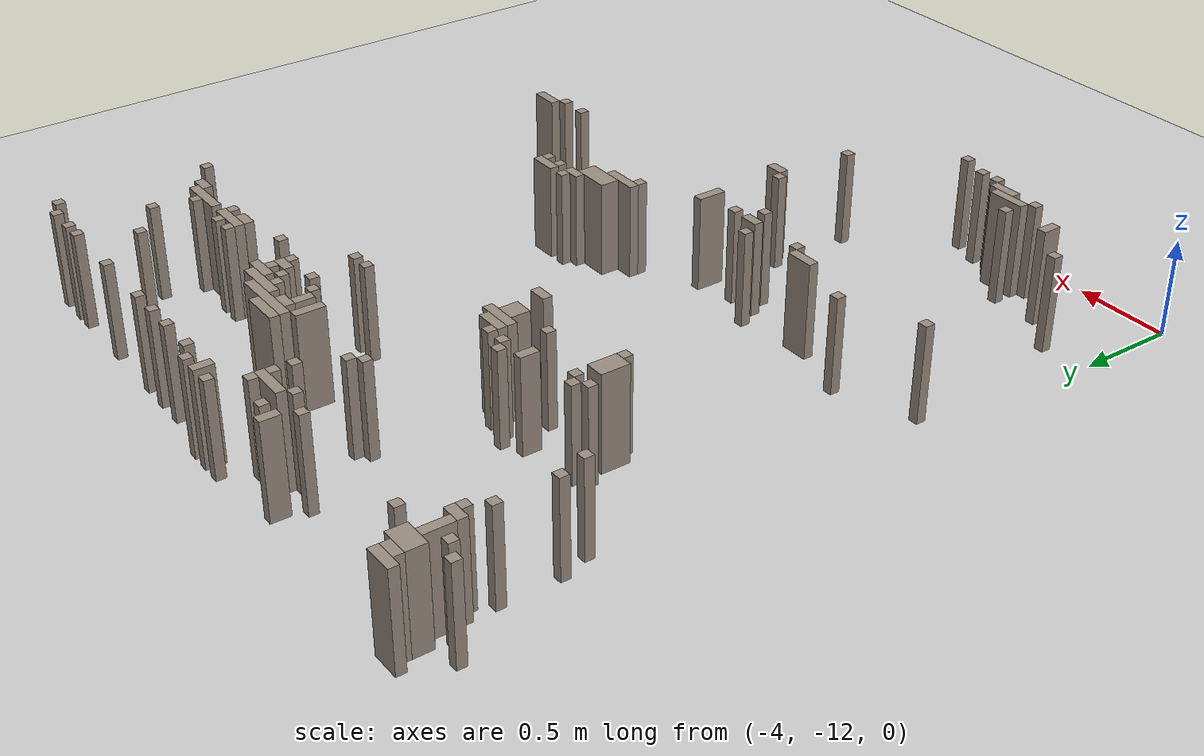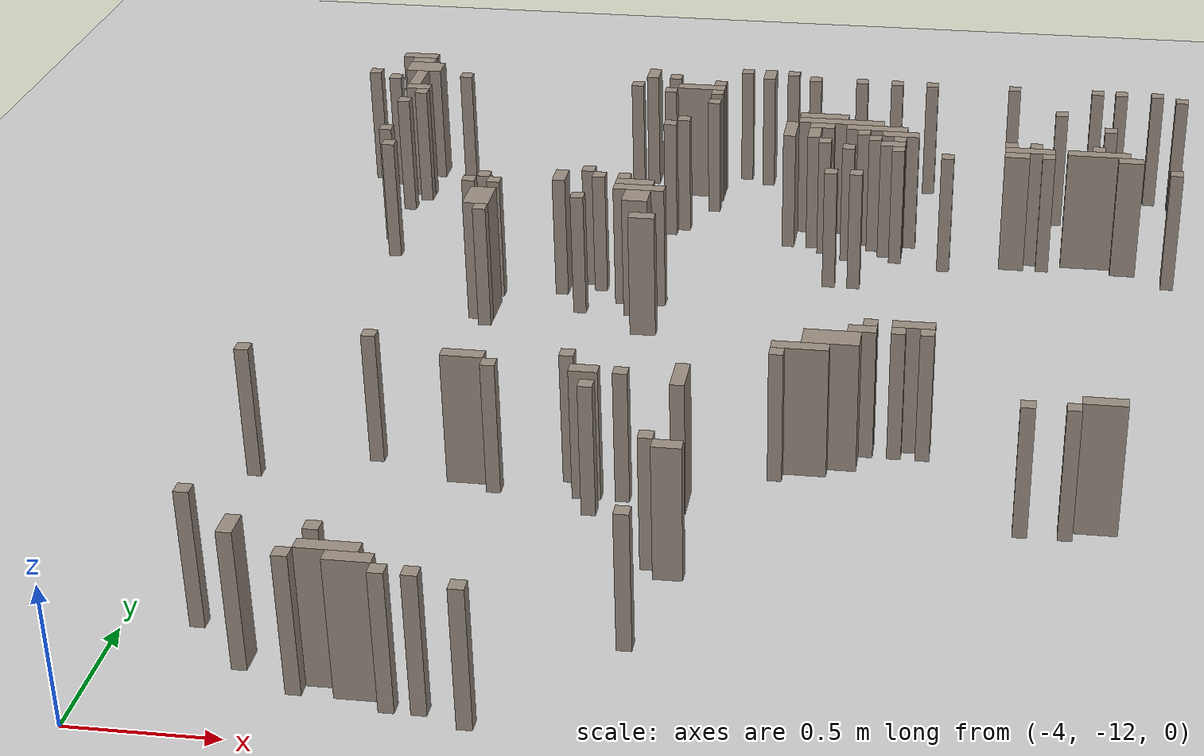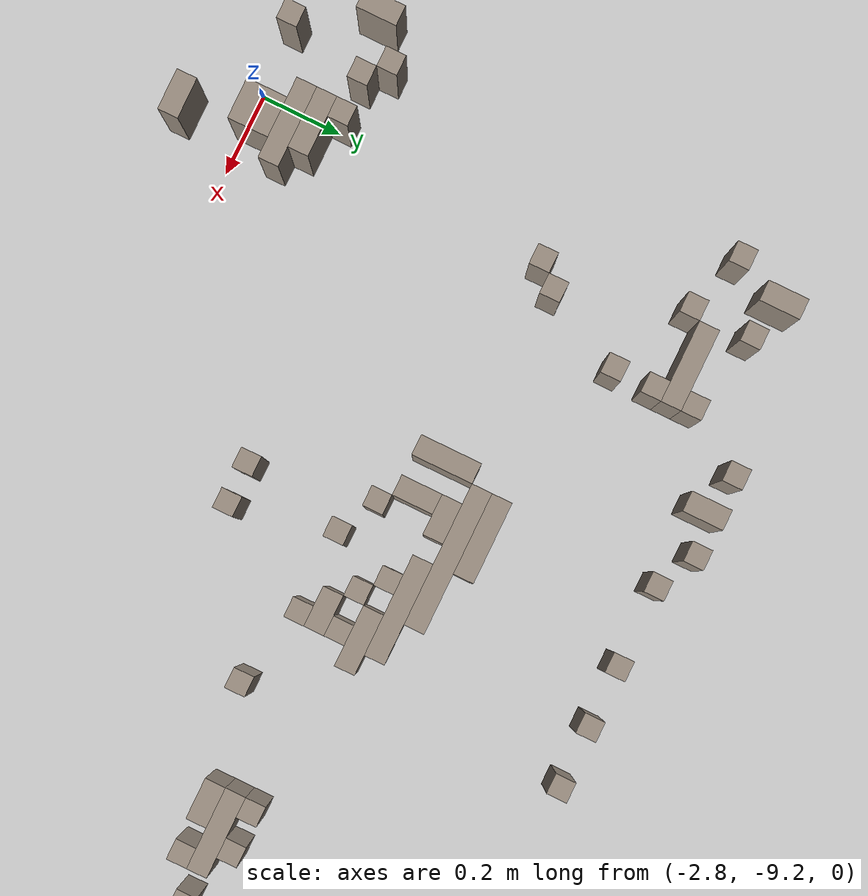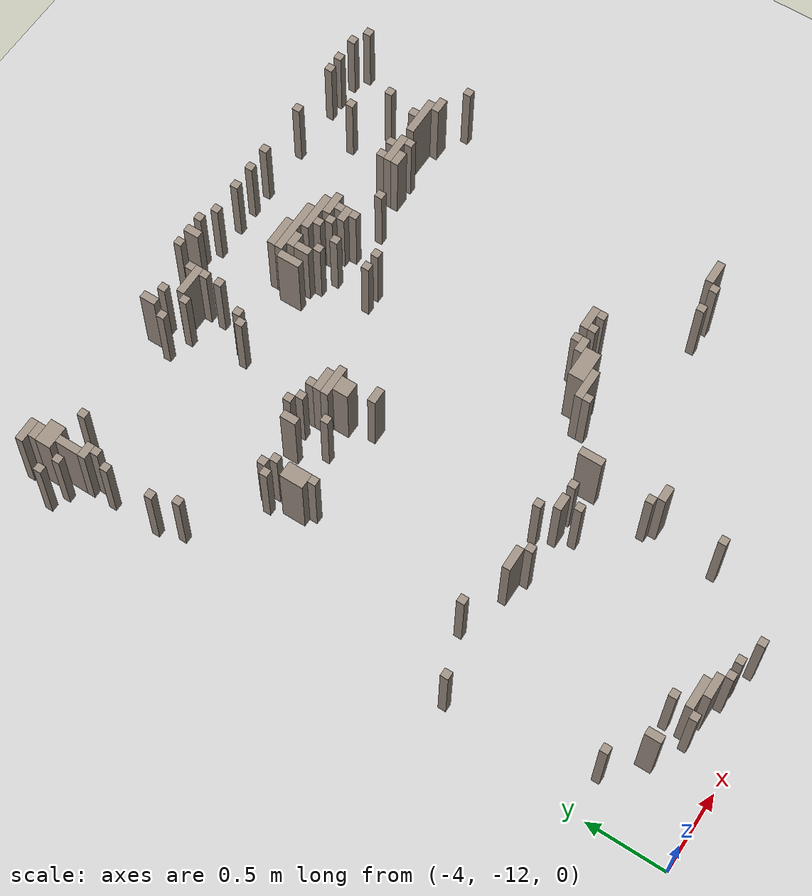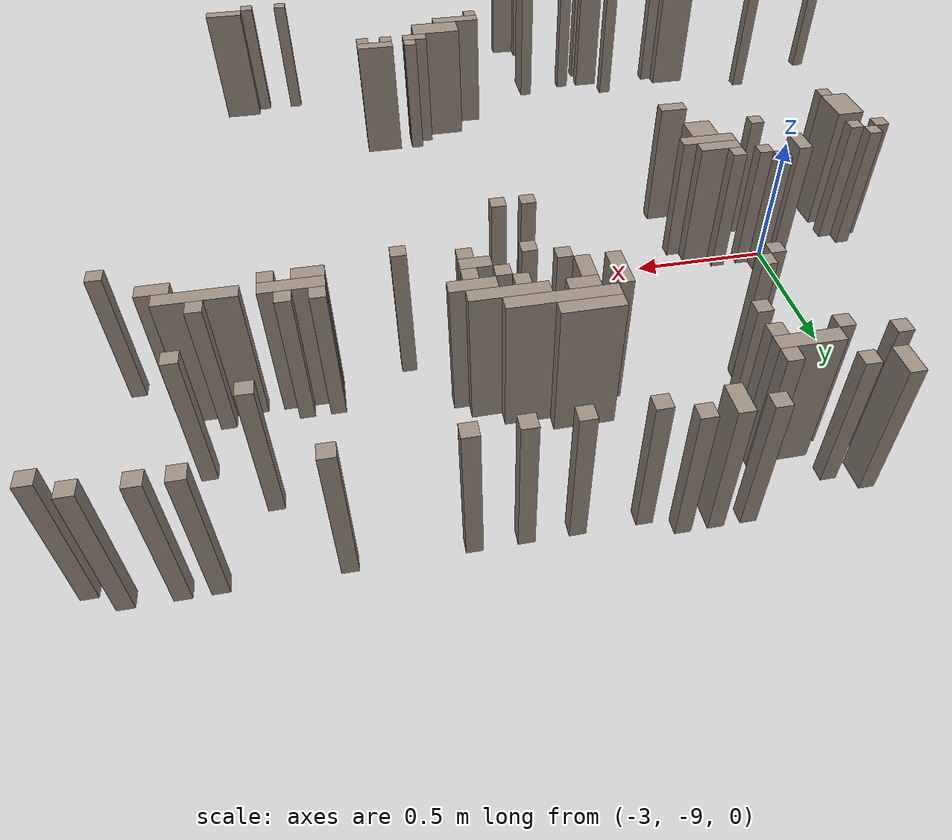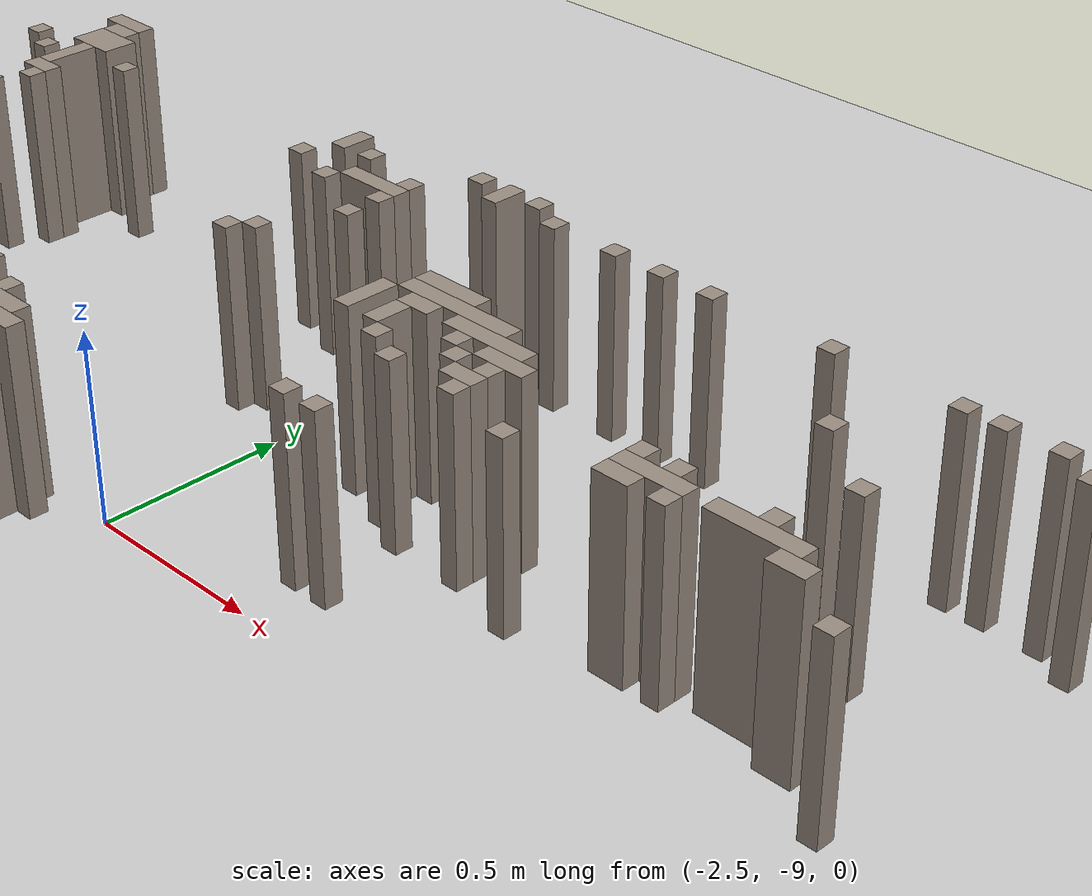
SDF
<sdf version="1.8">
 <world name="sala_real">
  <model name="ground_plane">
   <static>true</static>
   <link name="link">
    <collision name="col">
     <geometry><plane><normal>0 0 1</normal><size>100 100</size></plane></geometry>
    </collision>
    <visual name="vis">
     <geometry><plane><normal>0 0 1</normal><size>100 100</size></plane></geometry>
     <material><ambient>0.8 0.8 0.8 1</ambient><diffuse>0.8 0.8 0.8 1</diffuse></material>
    </visual>
   </link>
  </model>
  <model name="wall_508">
   <static>true</static>
   <pose>-2.760 -7.938 0.250 0 0 0</pose>
   <link name="link">
    <collision name="col"><geometry><box><size>0.050 0.050 0.500</size></box></geometry></collision>
    <visual name="vis">
     <geometry><box><size>0.050 0.050 0.500</size></box></geometry>
     <material><ambient>0.6 0.55 0.5 1</ambient><diffuse>0.6 0.55 0.5 1</diffuse></material>
    </visual>
   </link>
  </model>
  <model name="wall_509">
   <static>true</static>
   <pose>-2.560 -7.988 0.250 0 0 0</pose>
   <link name="link">
    <collision name="col"><geometry><box><size>0.050 0.050 0.500</size></box></geometry></collision>
    <visual name="vis">
     <geometry><box><size>0.050 0.050 0.500</size></box></geometry>
     <material><ambient>0.6 0.55 0.5 1</ambient><diffuse>0.6 0.55 0.5 1</diffuse></material>
    </visual>
   </link>
  </model>
  <model name="wall_516">
   <static>true</static>
   <pose>-2.560 -8.088 0.250 0 0 0</pose>
   <link name="link">
    <collision name="col"><geometry><box><size>0.050 0.050 0.500</size></box></geometry></collision>
    <visual name="vis">
     <geometry><box><size>0.050 0.050 0.500</size></box></geometry>
     <material><ambient>0.6 0.55 0.5 1</ambient><diffuse>0.6 0.55 0.5 1</diffuse></material>
    </visual>
   </link>
  </model>
  <model name="wall_524">
   <static>true</static>
   <pose>-3.860 -8.088 0.250 0 0 0</pose>
   <link name="link">
    <collision name="col"><geometry><box><size>0.050 0.150 0.500</size></box></geometry></collision>
    <visual name="vis">
     <geometry><box><size>0.050 0.150 0.500</size></box></geometry>
     <material><ambient>0.6 0.55 0.5 1</ambient><diffuse>0.6 0.55 0.5 1</diffuse></material>
    </visual>
   </link>
  </model>
  <model name="wall_532">
   <static>true</static>
   <pose>-1.310 -7.888 0.250 0 0 0</pose>
   <link name="link">
    <collision name="col"><geometry><box><size>0.050 0.050 0.500</size></box></geometry></collision>
    <visual name="vis">
     <geometry><box><size>0.050 0.050 0.500</size></box></geometry>
     <material><ambient>0.6 0.55 0.5 1</ambient><diffuse>0.6 0.55 0.5 1</diffuse></material>
    </visual>
   </link>
  </model>
  <model name="wall_533">
   <static>true</static>
   <pose>-0.960 -7.888 0.250 0 0 0</pose>
   <link name="link">
    <collision name="col"><geometry><box><size>0.050 0.050 0.500</size></box></geometry></collision>
    <visual name="vis">
     <geometry><box><size>0.050 0.050 0.500</size></box></geometry>
     <material><ambient>0.6 0.55 0.5 1</ambient><diffuse>0.6 0.55 0.5 1</diffuse></material>
    </visual>
   </link>
  </model>
  <model name="wall_537">
   <static>true</static>
   <pose>-1.960 -7.888 0.250 0 0 0</pose>
   <link name="link">
    <collision name="col"><geometry><box><size>0.050 0.050 0.500</size></box></geometry></collision>
    <visual name="vis">
     <geometry><box><size>0.050 0.050 0.500</size></box></geometry>
     <material><ambient>0.6 0.55 0.5 1</ambient><diffuse>0.6 0.55 0.5 1</diffuse></material>
    </visual>
   </link>
  </model>
  <model name="wall_538">
   <static>true</static>
   <pose>-1.760 -8.488 0.250 0 0 0</pose>
   <link name="link">
    <collision name="col"><geometry><box><size>0.050 0.050 0.500</size></box></geometry></collision>
    <visual name="vis">
     <geometry><box><size>0.050 0.050 0.500</size></box></geometry>
     <material><ambient>0.6 0.55 0.5 1</ambient><diffuse>0.6 0.55 0.5 1</diffuse></material>
    </visual>
   </link>
  </model>
  <model name="wall_541">
   <static>true</static>
   <pose>-3.860 -8.338 0.250 0 0 0</pose>
   <link name="link">
    <collision name="col"><geometry><box><size>0.050 0.050 0.500</size></box></geometry></collision>
    <visual name="vis">
     <geometry><box><size>0.050 0.050 0.500</size></box></geometry>
     <material><ambient>0.6 0.55 0.5 1</ambient><diffuse>0.6 0.55 0.5 1</diffuse></material>
    </visual>
   </link>
  </model>
  <model name="wall_545">
   <static>true</static>
   <pose>-3.810 -8.238 0.250 0 0 0</pose>
   <link name="link">
    <collision name="col"><geometry><box><size>0.050 0.050 0.500</size></box></geometry></collision>
    <visual name="vis">
     <geometry><box><size>0.050 0.050 0.500</size></box></geometry>
     <material><ambient>0.6 0.55 0.5 1</ambient><diffuse>0.6 0.55 0.5 1</diffuse></material>
    </visual>
   </link>
  </model>
  <model name="wall_546">
   <static>true</static>
   <pose>-1.910 -8.438 0.250 0 0 0</pose>
   <link name="link">
    <collision name="col"><geometry><box><size>0.050 0.050 0.500</size></box></geometry></collision>
    <visual name="vis">
     <geometry><box><size>0.050 0.050 0.500</size></box></geometry>
     <material><ambient>0.6 0.55 0.5 1</ambient><diffuse>0.6 0.55 0.5 1</diffuse></material>
    </visual>
   </link>
  </model>
  <model name="wall_548">
   <static>true</static>
   <pose>-2.910 -8.038 0.250 0 0 0</pose>
   <link name="link">
    <collision name="col"><geometry><box><size>0.050 0.050 0.500</size></box></geometry></collision>
    <visual name="vis">
     <geometry><box><size>0.050 0.050 0.500</size></box></geometry>
     <material><ambient>0.6 0.55 0.5 1</ambient><diffuse>0.6 0.55 0.5 1</diffuse></material>
    </visual>
   </link>
  </model>
  <model name="wall_553">
   <static>true</static>
   <pose>-2.960 -8.938 0.250 0 0 0</pose>
   <link name="link">
    <collision name="col"><geometry><box><size>0.050 0.050 0.500</size></box></geometry></collision>
    <visual name="vis">
     <geometry><box><size>0.050 0.050 0.500</size></box></geometry>
     <material><ambient>0.6 0.55 0.5 1</ambient><diffuse>0.6 0.55 0.5 1</diffuse></material>
    </visual>
   </link>
  </model>
  <model name="wall_555">
   <static>true</static>
   <pose>-3.310 -9.088 0.250 0 0 0</pose>
   <link name="link">
    <collision name="col"><geometry><box><size>0.050 0.050 0.500</size></box></geometry></collision>
    <visual name="vis">
     <geometry><box><size>0.050 0.050 0.500</size></box></geometry>
     <material><ambient>0.6 0.55 0.5 1</ambient><diffuse>0.6 0.55 0.5 1</diffuse></material>
    </visual>
   </link>
  </model>
  <model name="wall_567">
   <static>true</static>
   <pose>-1.760 -8.588 0.250 0 0 0</pose>
   <link name="link">
    <collision name="col"><geometry><box><size>0.050 0.050 0.500</size></box></geometry></collision>
    <visual name="vis">
     <geometry><box><size>0.050 0.050 0.500</size></box></geometry>
     <material><ambient>0.6 0.55 0.5 1</ambient><diffuse>0.6 0.55 0.5 1</diffuse></material>
    </visual>
   </link>
  </model>
  <model name="wall_569">
   <static>true</static>
   <pose>-1.785 -8.538 0.250 0 0 0</pose>
   <link name="link">
    <collision name="col"><geometry><box><size>0.100 0.050 0.500</size></box></geometry></collision>
    <visual name="vis">
     <geometry><box><size>0.100 0.050 0.500</size></box></geometry>
     <material><ambient>0.6 0.55 0.5 1</ambient><diffuse>0.6 0.55 0.5 1</diffuse></material>
    </visual>
   </link>
  </model>
  <model name="wall_570">
   <static>true</static>
   <pose>-1.660 -7.888 0.250 0 0 0</pose>
   <link name="link">
    <collision name="col"><geometry><box><size>0.050 0.050 0.500</size></box></geometry></collision>
    <visual name="vis">
     <geometry><box><size>0.050 0.050 0.500</size></box></geometry>
     <material><ambient>0.6 0.55 0.5 1</ambient><diffuse>0.6 0.55 0.5 1</diffuse></material>
    </visual>
   </link>
  </model>
  <model name="wall_571">
   <static>true</static>
   <pose>-1.560 -8.638 0.250 0 0 0</pose>
   <link name="link">
    <collision name="col"><geometry><box><size>0.050 0.050 0.500</size></box></geometry></collision>
    <visual name="vis">
     <geometry><box><size>0.050 0.050 0.500</size></box></geometry>
     <material><ambient>0.6 0.55 0.5 1</ambient><diffuse>0.6 0.55 0.5 1</diffuse></material>
    </visual>
   </link>
  </model>
  <model name="wall_572">
   <static>true</static>
   <pose>-2.060 -8.538 0.250 0 0 0</pose>
   <link name="link">
    <collision name="col"><geometry><box><size>0.050 0.050 0.500</size></box></geometry></collision>
    <visual name="vis">
     <geometry><box><size>0.050 0.050 0.500</size></box></geometry>
     <material><ambient>0.6 0.55 0.5 1</ambient><diffuse>0.6 0.55 0.5 1</diffuse></material>
    </visual>
   </link>
  </model>
  <model name="wall_574">
   <static>true</static>
   <pose>-2.760 -8.088 0.250 0 0 0</pose>
   <link name="link">
    <collision name="col"><geometry><box><size>0.050 0.050 0.500</size></box></geometry></collision>
    <visual name="vis">
     <geometry><box><size>0.050 0.050 0.500</size></box></geometry>
     <material><ambient>0.6 0.55 0.5 1</ambient><diffuse>0.6 0.55 0.5 1</diffuse></material>
    </visual>
   </link>
  </model>
  <model name="wall_577">
   <static>true</static>
   <pose>-2.360 -7.863 0.250 0 0 0</pose>
   <link name="link">
    <collision name="col"><geometry><box><size>0.050 0.100 0.500</size></box></geometry></collision>
    <visual name="vis">
     <geometry><box><size>0.050 0.100 0.500</size></box></geometry>
     <material><ambient>0.6 0.55 0.5 1</ambient><diffuse>0.6 0.55 0.5 1</diffuse></material>
    </visual>
   </link>
  </model>
  <model name="wall_579">
   <static>true</static>
   <pose>-3.860 -8.638 0.250 0 0 0</pose>
   <link name="link">
    <collision name="col"><geometry><box><size>0.050 0.050 0.500</size></box></geometry></collision>
    <visual name="vis">
     <geometry><box><size>0.050 0.050 0.500</size></box></geometry>
     <material><ambient>0.6 0.55 0.5 1</ambient><diffuse>0.6 0.55 0.5 1</diffuse></material>
    </visual>
   </link>
  </model>
  <model name="wall_580">
   <static>true</static>
   <pose>-2.685 -9.338 0.250 0 0 0</pose>
   <link name="link">
    <collision name="col"><geometry><box><size>0.100 0.050 0.500</size></box></geometry></collision>
    <visual name="vis">
     <geometry><box><size>0.100 0.050 0.500</size></box></geometry>
     <material><ambient>0.6 0.55 0.5 1</ambient><diffuse>0.6 0.55 0.5 1</diffuse></material>
    </visual>
   </link>
  </model>
  <model name="wall_581">
   <static>true</static>
   <pose>-2.560 -8.188 0.250 0 0 0</pose>
   <link name="link">
    <collision name="col"><geometry><box><size>0.050 0.050 0.500</size></box></geometry></collision>
    <visual name="vis">
     <geometry><box><size>0.050 0.050 0.500</size></box></geometry>
     <material><ambient>0.6 0.55 0.5 1</ambient><diffuse>0.6 0.55 0.5 1</diffuse></material>
    </visual>
   </link>
  </model>
  <model name="wall_586">
   <static>true</static>
   <pose>-1.210 -8.488 0.250 0 0 0</pose>
   <link name="link">
    <collision name="col"><geometry><box><size>0.050 0.050 0.500</size></box></geometry></collision>
    <visual name="vis">
     <geometry><box><size>0.050 0.050 0.500</size></box></geometry>
     <material><ambient>0.6 0.55 0.5 1</ambient><diffuse>0.6 0.55 0.5 1</diffuse></material>
    </visual>
   </link>
  </model>
  <model name="wall_590">
   <static>true</static>
   <pose>-2.660 -8.388 0.250 0 0 0</pose>
   <link name="link">
    <collision name="col"><geometry><box><size>0.050 0.050 0.500</size></box></geometry></collision>
    <visual name="vis">
     <geometry><box><size>0.050 0.050 0.500</size></box></geometry>
     <material><ambient>0.6 0.55 0.5 1</ambient><diffuse>0.6 0.55 0.5 1</diffuse></material>
    </visual>
   </link>
  </model>
  <model name="wall_596">
   <static>true</static>
   <pose>-2.410 -10.938 0.250 0 0 0</pose>
   <link name="link">
    <collision name="col"><geometry><box><size>0.050 0.050 0.500</size></box></geometry></collision>
    <visual name="vis">
     <geometry><box><size>0.050 0.050 0.500</size></box></geometry>
     <material><ambient>0.6 0.55 0.5 1</ambient><diffuse>0.6 0.55 0.5 1</diffuse></material>
    </visual>
   </link>
  </model>
  <model name="wall_600">
   <static>true</static>
   <pose>-3.310 -9.338 0.250 0 0 0</pose>
   <link name="link">
    <collision name="col"><geometry><box><size>0.050 0.050 0.500</size></box></geometry></collision>
    <visual name="vis">
     <geometry><box><size>0.050 0.050 0.500</size></box></geometry>
     <material><ambient>0.6 0.55 0.5 1</ambient><diffuse>0.6 0.55 0.5 1</diffuse></material>
    </visual>
   </link>
  </model>
  <model name="wall_601">
   <static>true</static>
   <pose>-3.360 -9.038 0.250 0 0 0</pose>
   <link name="link">
    <collision name="col"><geometry><box><size>0.050 0.050 0.500</size></box></geometry></collision>
    <visual name="vis">
     <geometry><box><size>0.050 0.050 0.500</size></box></geometry>
     <material><ambient>0.6 0.55 0.5 1</ambient><diffuse>0.6 0.55 0.5 1</diffuse></material>
    </visual>
   </link>
  </model>
  <model name="wall_602">
   <static>true</static>
   <pose>-3.060 -9.013 0.250 0 0 0</pose>
   <link name="link">
    <collision name="col"><geometry><box><size>0.050 0.100 0.500</size></box></geometry></collision>
    <visual name="vis">
     <geometry><box><size>0.050 0.100 0.500</size></box></geometry>
     <material><ambient>0.6 0.55 0.5 1</ambient><diffuse>0.6 0.55 0.5 1</diffuse></material>
    </visual>
   </link>
  </model>
  <model name="wall_603">
   <static>true</static>
   <pose>-2.960 -9.188 0.250 0 0 0</pose>
   <link name="link">
    <collision name="col"><geometry><box><size>0.050 0.050 0.500</size></box></geometry></collision>
    <visual name="vis">
     <geometry><box><size>0.050 0.050 0.500</size></box></geometry>
     <material><ambient>0.6 0.55 0.5 1</ambient><diffuse>0.6 0.55 0.5 1</diffuse></material>
    </visual>
   </link>
  </model>
  <model name="wall_604">
   <static>true</static>
   <pose>-2.810 -8.988 0.250 0 0 0</pose>
   <link name="link">
    <collision name="col"><geometry><box><size>0.050 0.050 0.500</size></box></geometry></collision>
    <visual name="vis">
     <geometry><box><size>0.050 0.050 0.500</size></box></geometry>
     <material><ambient>0.6 0.55 0.5 1</ambient><diffuse>0.6 0.55 0.5 1</diffuse></material>
    </visual>
   </link>
  </model>
  <model name="wall_642">
   <static>true</static>
   <pose>-0.610 -7.938 0.250 0 0 0</pose>
   <link name="link">
    <collision name="col"><geometry><box><size>0.050 0.050 0.500</size></box></geometry></collision>
    <visual name="vis">
     <geometry><box><size>0.050 0.050 0.500</size></box></geometry>
     <material><ambient>0.6 0.55 0.5 1</ambient><diffuse>0.6 0.55 0.5 1</diffuse></material>
    </visual>
   </link>
  </model>
  <model name="wall_652">
   <static>true</static>
   <pose>-2.160 -7.888 0.250 0 0 0</pose>
   <link name="link">
    <collision name="col"><geometry><box><size>0.050 0.050 0.500</size></box></geometry></collision>
    <visual name="vis">
     <geometry><box><size>0.050 0.050 0.500</size></box></geometry>
     <material><ambient>0.6 0.55 0.5 1</ambient><diffuse>0.6 0.55 0.5 1</diffuse></material>
    </visual>
   </link>
  </model>
  <model name="wall_665">
   <static>true</static>
   <pose>-2.410 -11.388 0.250 0 0 0</pose>
   <link name="link">
    <collision name="col"><geometry><box><size>0.050 0.050 0.500</size></box></geometry></collision>
    <visual name="vis">
     <geometry><box><size>0.050 0.050 0.500</size></box></geometry>
     <material><ambient>0.6 0.55 0.5 1</ambient><diffuse>0.6 0.55 0.5 1</diffuse></material>
    </visual>
   </link>
  </model>
  <model name="wall_666">
   <static>true</static>
   <pose>-0.860 -7.888 0.250 0 0 0</pose>
   <link name="link">
    <collision name="col"><geometry><box><size>0.050 0.050 0.500</size></box></geometry></collision>
    <visual name="vis">
     <geometry><box><size>0.050 0.050 0.500</size></box></geometry>
     <material><ambient>0.6 0.55 0.5 1</ambient><diffuse>0.6 0.55 0.5 1</diffuse></material>
    </visual>
   </link>
  </model>
  <model name="wall_669">
   <static>true</static>
   <pose>-2.060 -10.338 0.250 0 0 0</pose>
   <link name="link">
    <collision name="col"><geometry><box><size>0.050 0.050 0.500</size></box></geometry></collision>
    <visual name="vis">
     <geometry><box><size>0.050 0.050 0.500</size></box></geometry>
     <material><ambient>0.6 0.55 0.5 1</ambient><diffuse>0.6 0.55 0.5 1</diffuse></material>
    </visual>
   </link>
  </model>
  <model name="wall_676">
   <static>true</static>
   <pose>-1.660 -10.138 0.250 0 0 0</pose>
   <link name="link">
    <collision name="col"><geometry><box><size>0.050 0.050 0.500</size></box></geometry></collision>
    <visual name="vis">
     <geometry><box><size>0.050 0.050 0.500</size></box></geometry>
     <material><ambient>0.6 0.55 0.5 1</ambient><diffuse>0.6 0.55 0.5 1</diffuse></material>
    </visual>
   </link>
  </model>
  <model name="wall_688">
   <static>true</static>
   <pose>-2.085 -8.288 0.250 0 0 0</pose>
   <link name="link">
    <collision name="col"><geometry><box><size>0.200 0.050 0.500</size></box></geometry></collision>
    <visual name="vis">
     <geometry><box><size>0.200 0.050 0.500</size></box></geometry>
     <material><ambient>0.6 0.55 0.5 1</ambient><diffuse>0.6 0.55 0.5 1</diffuse></material>
    </visual>
   </link>
  </model>
  <model name="wall_690">
   <static>true</static>
   <pose>-0.660 -8.688 0.250 0 0 0</pose>
   <link name="link">
    <collision name="col"><geometry><box><size>0.050 0.050 0.500</size></box></geometry></collision>
    <visual name="vis">
     <geometry><box><size>0.050 0.050 0.500</size></box></geometry>
     <material><ambient>0.6 0.55 0.5 1</ambient><diffuse>0.6 0.55 0.5 1</diffuse></material>
    </visual>
   </link>
  </model>
  <model name="wall_713">
   <static>true</static>
   <pose>-1.960 -8.588 0.250 0 0 0</pose>
   <link name="link">
    <collision name="col"><geometry><box><size>0.050 0.050 0.500</size></box></geometry></collision>
    <visual name="vis">
     <geometry><box><size>0.050 0.050 0.500</size></box></geometry>
     <material><ambient>0.6 0.55 0.5 1</ambient><diffuse>0.6 0.55 0.5 1</diffuse></material>
    </visual>
   </link>
  </model>
  <model name="wall_714">
   <static>true</static>
   <pose>-1.760 -10.088 0.250 0 0 0</pose>
   <link name="link">
    <collision name="col"><geometry><box><size>0.050 0.050 0.500</size></box></geometry></collision>
    <visual name="vis">
     <geometry><box><size>0.050 0.050 0.500</size></box></geometry>
     <material><ambient>0.6 0.55 0.5 1</ambient><diffuse>0.6 0.55 0.5 1</diffuse></material>
    </visual>
   </link>
  </model>
  <model name="wall_718">
   <static>true</static>
   <pose>-1.910 -8.838 0.250 0 0 0</pose>
   <link name="link">
    <collision name="col"><geometry><box><size>0.050 0.050 0.500</size></box></geometry></collision>
    <visual name="vis">
     <geometry><box><size>0.050 0.050 0.500</size></box></geometry>
     <material><ambient>0.6 0.55 0.5 1</ambient><diffuse>0.6 0.55 0.5 1</diffuse></material>
    </visual>
   </link>
  </model>
  <model name="wall_853">
   <static>true</static>
   <pose>-2.360 -10.538 0.250 0 0 0</pose>
   <link name="link">
    <collision name="col"><geometry><box><size>0.050 0.150 0.500</size></box></geometry></collision>
    <visual name="vis">
     <geometry><box><size>0.050 0.150 0.500</size></box></geometry>
     <material><ambient>0.6 0.55 0.5 1</ambient><diffuse>0.6 0.55 0.5 1</diffuse></material>
    </visual>
   </link>
  </model>
  <model name="wall_870">
   <static>true</static>
   <pose>-2.335 -10.988 0.250 0 0 0</pose>
   <link name="link">
    <collision name="col"><geometry><box><size>0.100 0.050 0.500</size></box></geometry></collision>
    <visual name="vis">
     <geometry><box><size>0.100 0.050 0.500</size></box></geometry>
     <material><ambient>0.6 0.55 0.5 1</ambient><diffuse>0.6 0.55 0.5 1</diffuse></material>
    </visual>
   </link>
  </model>
  <model name="wall_913">
   <static>true</static>
   <pose>-1.310 -8.488 0.250 0 0 0</pose>
   <link name="link">
    <collision name="col"><geometry><box><size>0.050 0.050 0.500</size></box></geometry></collision>
    <visual name="vis">
     <geometry><box><size>0.050 0.050 0.500</size></box></geometry>
     <material><ambient>0.6 0.55 0.5 1</ambient><diffuse>0.6 0.55 0.5 1</diffuse></material>
    </visual>
   </link>
  </model>
  <model name="wall_920">
   <static>true</static>
   <pose>-2.260 -7.838 0.250 0 0 0</pose>
   <link name="link">
    <collision name="col"><geometry><box><size>0.050 0.050 0.500</size></box></geometry></collision>
    <visual name="vis">
     <geometry><box><size>0.050 0.050 0.500</size></box></geometry>
     <material><ambient>0.6 0.55 0.5 1</ambient><diffuse>0.6 0.55 0.5 1</diffuse></material>
    </visual>
   </link>
  </model>
  <model name="wall_931">
   <static>true</static>
   <pose>-1.060 -10.588 0.250 0 0 0</pose>
   <link name="link">
    <collision name="col"><geometry><box><size>0.050 0.050 0.500</size></box></geometry></collision>
    <visual name="vis">
     <geometry><box><size>0.050 0.050 0.500</size></box></geometry>
     <material><ambient>0.6 0.55 0.5 1</ambient><diffuse>0.6 0.55 0.5 1</diffuse></material>
    </visual>
   </link>
  </model>
  <model name="wall_953">
   <static>true</static>
   <pose>-2.210 -8.438 0.250 0 0 0</pose>
   <link name="link">
    <collision name="col"><geometry><box><size>0.050 0.150 0.500</size></box></geometry></collision>
    <visual name="vis">
     <geometry><box><size>0.050 0.150 0.500</size></box></geometry>
     <material><ambient>0.6 0.55 0.5 1</ambient><diffuse>0.6 0.55 0.5 1</diffuse></material>
    </visual>
   </link>
  </model>
  <model name="wall_957">
   <static>true</static>
   <pose>-1.285 -8.588 0.250 0 0 0</pose>
   <link name="link">
    <collision name="col"><geometry><box><size>0.100 0.050 0.500</size></box></geometry></collision>
    <visual name="vis">
     <geometry><box><size>0.100 0.050 0.500</size></box></geometry>
     <material><ambient>0.6 0.55 0.5 1</ambient><diffuse>0.6 0.55 0.5 1</diffuse></material>
    </visual>
   </link>
  </model>
  <model name="wall_1060">
   <static>true</static>
   <pose>-0.710 -7.888 0.250 0 0 0</pose>
   <link name="link">
    <collision name="col"><geometry><box><size>0.050 0.050 0.500</size></box></geometry></collision>
    <visual name="vis">
     <geometry><box><size>0.050 0.050 0.500</size></box></geometry>
     <material><ambient>0.6 0.55 0.5 1</ambient><diffuse>0.6 0.55 0.5 1</diffuse></material>
    </visual>
   </link>
  </model>
  <model name="wall_1090">
   <static>true</static>
   <pose>-3.910 -7.838 0.250 0 0 0</pose>
   <link name="link">
    <collision name="col"><geometry><box><size>0.150 0.050 0.500</size></box></geometry></collision>
    <visual name="vis">
     <geometry><box><size>0.150 0.050 0.500</size></box></geometry>
     <material><ambient>0.6 0.55 0.5 1</ambient><diffuse>0.6 0.55 0.5 1</diffuse></material>
    </visual>
   </link>
  </model>
  <model name="wall_1091">
   <static>true</static>
   <pose>-3.760 -11.438 0.250 0 0 0</pose>
   <link name="link">
    <collision name="col"><geometry><box><size>0.050 0.050 0.500</size></box></geometry></collision>
    <visual name="vis">
     <geometry><box><size>0.050 0.050 0.500</size></box></geometry>
     <material><ambient>0.6 0.55 0.5 1</ambient><diffuse>0.6 0.55 0.5 1</diffuse></material>
    </visual>
   </link>
  </model>
  <model name="wall_1094">
   <static>true</static>
   <pose>-3.960 -8.088 0.250 0 0 0</pose>
   <link name="link">
    <collision name="col"><geometry><box><size>0.050 0.050 0.500</size></box></geometry></collision>
    <visual name="vis">
     <geometry><box><size>0.050 0.050 0.500</size></box></geometry>
     <material><ambient>0.6 0.55 0.5 1</ambient><diffuse>0.6 0.55 0.5 1</diffuse></material>
    </visual>
   </link>
  </model>
  <model name="wall_1096">
   <static>true</static>
   <pose>-3.810 -8.788 0.250 0 0 0</pose>
   <link name="link">
    <collision name="col"><geometry><box><size>0.050 0.050 0.500</size></box></geometry></collision>
    <visual name="vis">
     <geometry><box><size>0.050 0.050 0.500</size></box></geometry>
     <material><ambient>0.6 0.55 0.5 1</ambient><diffuse>0.6 0.55 0.5 1</diffuse></material>
    </visual>
   </link>
  </model>
  <model name="wall_1097">
   <static>true</static>
   <pose>-2.660 -10.638 0.250 0 0 0</pose>
   <link name="link">
    <collision name="col"><geometry><box><size>0.050 0.050 0.500</size></box></geometry></collision>
    <visual name="vis">
     <geometry><box><size>0.050 0.050 0.500</size></box></geometry>
     <material><ambient>0.6 0.55 0.5 1</ambient><diffuse>0.6 0.55 0.5 1</diffuse></material>
    </visual>
   </link>
  </model>
  <model name="wall_1099">
   <static>true</static>
   <pose>-3.885 -7.888 0.250 0 0 0</pose>
   <link name="link">
    <collision name="col"><geometry><box><size>0.100 0.050 0.500</size></box></geometry></collision>
    <visual name="vis">
     <geometry><box><size>0.100 0.050 0.500</size></box></geometry>
     <material><ambient>0.6 0.55 0.5 1</ambient><diffuse>0.6 0.55 0.5 1</diffuse></material>
    </visual>
   </link>
  </model>
  <model name="wall_1102">
   <static>true</static>
   <pose>-3.860 -10.538 0.250 0 0 0</pose>
   <link name="link">
    <collision name="col"><geometry><box><size>0.050 0.050 0.500</size></box></geometry></collision>
    <visual name="vis">
     <geometry><box><size>0.050 0.050 0.500</size></box></geometry>
     <material><ambient>0.6 0.55 0.5 1</ambient><diffuse>0.6 0.55 0.5 1</diffuse></material>
    </visual>
   </link>
  </model>
  <model name="wall_1103">
   <static>true</static>
   <pose>-2.735 -9.163 0.250 0 0 0</pose>
   <link name="link">
    <collision name="col"><geometry><box><size>0.100 0.100 0.500</size></box></geometry></collision>
    <visual name="vis">
     <geometry><box><size>0.100 0.100 0.500</size></box></geometry>
     <material><ambient>0.6 0.55 0.5 1</ambient><diffuse>0.6 0.55 0.5 1</diffuse></material>
    </visual>
   </link>
  </model>
  <model name="wall_1112">
   <static>true</static>
   <pose>-3.860 -7.963 0.250 0 0 0</pose>
   <link name="link">
    <collision name="col"><geometry><box><size>0.150 0.100 0.500</size></box></geometry></collision>
    <visual name="vis">
     <geometry><box><size>0.150 0.100 0.500</size></box></geometry>
     <material><ambient>0.6 0.55 0.5 1</ambient><diffuse>0.6 0.55 0.5 1</diffuse></material>
    </visual>
   </link>
  </model>
  <model name="wall_1124">
   <static>true</static>
   <pose>-3.410 -9.088 0.250 0 0 0</pose>
   <link name="link">
    <collision name="col"><geometry><box><size>0.050 0.050 0.500</size></box></geometry></collision>
    <visual name="vis">
     <geometry><box><size>0.050 0.050 0.500</size></box></geometry>
     <material><ambient>0.6 0.55 0.5 1</ambient><diffuse>0.6 0.55 0.5 1</diffuse></material>
    </visual>
   </link>
  </model>
  <model name="wall_1128">
   <static>true</static>
   <pose>-4.060 -8.038 0.250 0 0 0</pose>
   <link name="link">
    <collision name="col"><geometry><box><size>0.050 0.050 0.500</size></box></geometry></collision>
    <visual name="vis">
     <geometry><box><size>0.050 0.050 0.500</size></box></geometry>
     <material><ambient>0.6 0.55 0.5 1</ambient><diffuse>0.6 0.55 0.5 1</diffuse></material>
    </visual>
   </link>
  </model>
  <model name="wall_1130">
   <static>true</static>
   <pose>-2.860 -7.913 0.250 0 0 0</pose>
   <link name="link">
    <collision name="col"><geometry><box><size>0.050 0.100 0.500</size></box></geometry></collision>
    <visual name="vis">
     <geometry><box><size>0.050 0.100 0.500</size></box></geometry>
     <material><ambient>0.6 0.55 0.5 1</ambient><diffuse>0.6 0.55 0.5 1</diffuse></material>
    </visual>
   </link>
  </model>
  <model name="wall_1131">
   <static>true</static>
   <pose>-2.960 -11.788 0.250 0 0 0</pose>
   <link name="link">
    <collision name="col"><geometry><box><size>0.050 0.050 0.500</size></box></geometry></collision>
    <visual name="vis">
     <geometry><box><size>0.050 0.050 0.500</size></box></geometry>
     <material><ambient>0.6 0.55 0.5 1</ambient><diffuse>0.6 0.55 0.5 1</diffuse></material>
    </visual>
   </link>
  </model>
  <model name="wall_1134">
   <static>true</static>
   <pose>-1.760 -8.438 0.250 0 0 0</pose>
   <link name="link">
    <collision name="col"><geometry><box><size>0.150 0.050 0.500</size></box></geometry></collision>
    <visual name="vis">
     <geometry><box><size>0.150 0.050 0.500</size></box></geometry>
     <material><ambient>0.6 0.55 0.5 1</ambient><diffuse>0.6 0.55 0.5 1</diffuse></material>
    </visual>
   </link>
  </model>
  <model name="wall_1135">
   <static>true</static>
   <pose>-3.835 -8.188 0.250 0 0 0</pose>
   <link name="link">
    <collision name="col"><geometry><box><size>0.100 0.050 0.500</size></box></geometry></collision>
    <visual name="vis">
     <geometry><box><size>0.100 0.050 0.500</size></box></geometry>
     <material><ambient>0.6 0.55 0.5 1</ambient><diffuse>0.6 0.55 0.5 1</diffuse></material>
    </visual>
   </link>
  </model>
  <model name="wall_1137">
   <static>true</static>
   <pose>-1.160 -8.588 0.250 0 0 0</pose>
   <link name="link">
    <collision name="col"><geometry><box><size>0.050 0.050 0.500</size></box></geometry></collision>
    <visual name="vis">
     <geometry><box><size>0.050 0.050 0.500</size></box></geometry>
     <material><ambient>0.6 0.55 0.5 1</ambient><diffuse>0.6 0.55 0.5 1</diffuse></material>
    </visual>
   </link>
  </model>
  <model name="wall_1138">
   <static>true</static>
   <pose>-2.460 -7.838 0.250 0 0 0</pose>
   <link name="link">
    <collision name="col"><geometry><box><size>0.050 0.050 0.500</size></box></geometry></collision>
    <visual name="vis">
     <geometry><box><size>0.050 0.050 0.500</size></box></geometry>
     <material><ambient>0.6 0.55 0.5 1</ambient><diffuse>0.6 0.55 0.5 1</diffuse></material>
    </visual>
   </link>
  </model>
  <model name="wall_1142">
   <static>true</static>
   <pose>-1.810 -7.888 0.250 0 0 0</pose>
   <link name="link">
    <collision name="col"><geometry><box><size>0.050 0.050 0.500</size></box></geometry></collision>
    <visual name="vis">
     <geometry><box><size>0.050 0.050 0.500</size></box></geometry>
     <material><ambient>0.6 0.55 0.5 1</ambient><diffuse>0.6 0.55 0.5 1</diffuse></material>
    </visual>
   </link>
  </model>
  <model name="wall_1143">
   <static>true</static>
   <pose>-0.960 -8.488 0.250 0 0 0</pose>
   <link name="link">
    <collision name="col"><geometry><box><size>0.050 0.050 0.500</size></box></geometry></collision>
    <visual name="vis">
     <geometry><box><size>0.050 0.050 0.500</size></box></geometry>
     <material><ambient>0.6 0.55 0.5 1</ambient><diffuse>0.6 0.55 0.5 1</diffuse></material>
    </visual>
   </link>
  </model>
  <model name="wall_1144">
   <static>true</static>
   <pose>-2.760 -10.438 0.250 0 0 0</pose>
   <link name="link">
    <collision name="col"><geometry><box><size>0.050 0.050 0.500</size></box></geometry></collision>
    <visual name="vis">
     <geometry><box><size>0.050 0.050 0.500</size></box></geometry>
     <material><ambient>0.6 0.55 0.5 1</ambient><diffuse>0.6 0.55 0.5 1</diffuse></material>
    </visual>
   </link>
  </model>
  <model name="wall_1145">
   <static>true</static>
   <pose>-2.560 -10.538 0.250 0 0 0</pose>
   <link name="link">
    <collision name="col"><geometry><box><size>0.050 0.050 0.500</size></box></geometry></collision>
    <visual name="vis">
     <geometry><box><size>0.050 0.050 0.500</size></box></geometry>
     <material><ambient>0.6 0.55 0.5 1</ambient><diffuse>0.6 0.55 0.5 1</diffuse></material>
    </visual>
   </link>
  </model>
  <model name="wall_1146">
   <static>true</static>
   <pose>-3.660 -8.038 0.250 0 0 0</pose>
   <link name="link">
    <collision name="col"><geometry><box><size>0.050 0.050 0.500</size></box></geometry></collision>
    <visual name="vis">
     <geometry><box><size>0.050 0.050 0.500</size></box></geometry>
     <material><ambient>0.6 0.55 0.5 1</ambient><diffuse>0.6 0.55 0.5 1</diffuse></material>
    </visual>
   </link>
  </model>
  <model name="wall_1147">
   <static>true</static>
   <pose>-2.910 -8.988 0.250 0 0 0</pose>
   <link name="link">
    <collision name="col"><geometry><box><size>0.050 0.050 0.500</size></box></geometry></collision>
    <visual name="vis">
     <geometry><box><size>0.050 0.050 0.500</size></box></geometry>
     <material><ambient>0.6 0.55 0.5 1</ambient><diffuse>0.6 0.55 0.5 1</diffuse></material>
    </visual>
   </link>
  </model>
  <model name="wall_1148">
   <static>true</static>
   <pose>-2.635 -8.038 0.250 0 0 0</pose>
   <link name="link">
    <collision name="col"><geometry><box><size>0.200 0.050 0.500</size></box></geometry></collision>
    <visual name="vis">
     <geometry><box><size>0.200 0.050 0.500</size></box></geometry>
     <material><ambient>0.6 0.55 0.5 1</ambient><diffuse>0.6 0.55 0.5 1</diffuse></material>
    </visual>
   </link>
  </model>
  <model name="wall_1149">
   <static>true</static>
   <pose>-1.110 -8.138 0.250 0 0 0</pose>
   <link name="link">
    <collision name="col"><geometry><box><size>0.050 0.050 0.500</size></box></geometry></collision>
    <visual name="vis">
     <geometry><box><size>0.050 0.050 0.500</size></box></geometry>
     <material><ambient>0.6 0.55 0.5 1</ambient><diffuse>0.6 0.55 0.5 1</diffuse></material>
    </visual>
   </link>
  </model>
  <model name="wall_1151">
   <static>true</static>
   <pose>-0.910 -8.288 0.250 0 0 0</pose>
   <link name="link">
    <collision name="col"><geometry><box><size>0.050 0.050 0.500</size></box></geometry></collision>
    <visual name="vis">
     <geometry><box><size>0.050 0.050 0.500</size></box></geometry>
     <material><ambient>0.6 0.55 0.5 1</ambient><diffuse>0.6 0.55 0.5 1</diffuse></material>
    </visual>
   </link>
  </model>
  <model name="wall_1152">
   <static>true</static>
   <pose>-2.010 -8.338 0.250 0 0 0</pose>
   <link name="link">
    <collision name="col"><geometry><box><size>0.350 0.050 0.500</size></box></geometry></collision>
    <visual name="vis">
     <geometry><box><size>0.350 0.050 0.500</size></box></geometry>
     <material><ambient>0.6 0.55 0.5 1</ambient><diffuse>0.6 0.55 0.5 1</diffuse></material>
    </visual>
   </link>
  </model>
  <model name="wall_1153">
   <static>true</static>
   <pose>-2.085 -8.388 0.250 0 0 0</pose>
   <link name="link">
    <collision name="col"><geometry><box><size>0.100 0.050 0.500</size></box></geometry></collision>
    <visual name="vis">
     <geometry><box><size>0.100 0.050 0.500</size></box></geometry>
     <material><ambient>0.6 0.55 0.5 1</ambient><diffuse>0.6 0.55 0.5 1</diffuse></material>
    </visual>
   </link>
  </model>
  <model name="wall_1154">
   <static>true</static>
   <pose>-1.860 -8.388 0.250 0 0 0</pose>
   <link name="link">
    <collision name="col"><geometry><box><size>0.250 0.050 0.500</size></box></geometry></collision>
    <visual name="vis">
     <geometry><box><size>0.250 0.050 0.500</size></box></geometry>
     <material><ambient>0.6 0.55 0.5 1</ambient><diffuse>0.6 0.55 0.5 1</diffuse></material>
    </visual>
   </link>
  </model>
  <model name="wall_1156">
   <static>true</static>
   <pose>-2.710 -8.438 0.250 0 0 0</pose>
   <link name="link">
    <collision name="col"><geometry><box><size>0.050 0.050 0.500</size></box></geometry></collision>
    <visual name="vis">
     <geometry><box><size>0.050 0.050 0.500</size></box></geometry>
     <material><ambient>0.6 0.55 0.5 1</ambient><diffuse>0.6 0.55 0.5 1</diffuse></material>
    </visual>
   </link>
  </model>
  <model name="wall_1157">
   <static>true</static>
   <pose>-2.110 -8.463 0.250 0 0 0</pose>
   <link name="link">
    <collision name="col"><geometry><box><size>0.050 0.100 0.500</size></box></geometry></collision>
    <visual name="vis">
     <geometry><box><size>0.050 0.100 0.500</size></box></geometry>
     <material><ambient>0.6 0.55 0.5 1</ambient><diffuse>0.6 0.55 0.5 1</diffuse></material>
    </visual>
   </link>
  </model>
  <model name="wall_1158">
   <static>true</static>
   <pose>-1.860 -8.488 0.250 0 0 0</pose>
   <link name="link">
    <collision name="col"><geometry><box><size>0.050 0.050 0.500</size></box></geometry></collision>
    <visual name="vis">
     <geometry><box><size>0.050 0.050 0.500</size></box></geometry>
     <material><ambient>0.6 0.55 0.5 1</ambient><diffuse>0.6 0.55 0.5 1</diffuse></material>
    </visual>
   </link>
  </model>
  <model name="wall_1159">
   <static>true</static>
   <pose>-1.210 -10.588 0.250 0 0 0</pose>
   <link name="link">
    <collision name="col"><geometry><box><size>0.050 0.050 0.500</size></box></geometry></collision>
    <visual name="vis">
     <geometry><box><size>0.050 0.050 0.500</size></box></geometry>
     <material><ambient>0.6 0.55 0.5 1</ambient><diffuse>0.6 0.55 0.5 1</diffuse></material>
    </visual>
   </link>
  </model>
  <model name="wall_1160">
   <static>true</static>
   <pose>-1.785 -10.138 0.250 0 0 0</pose>
   <link name="link">
    <collision name="col"><geometry><box><size>0.100 0.050 0.500</size></box></geometry></collision>
    <visual name="vis">
     <geometry><box><size>0.100 0.050 0.500</size></box></geometry>
     <material><ambient>0.6 0.55 0.5 1</ambient><diffuse>0.6 0.55 0.5 1</diffuse></material>
    </visual>
   </link>
  </model>
  <model name="wall_1161">
   <static>true</static>
   <pose>-1.235 -8.538 0.250 0 0 0</pose>
   <link name="link">
    <collision name="col"><geometry><box><size>0.200 0.050 0.500</size></box></geometry></collision>
    <visual name="vis">
     <geometry><box><size>0.200 0.050 0.500</size></box></geometry>
     <material><ambient>0.6 0.55 0.5 1</ambient><diffuse>0.6 0.55 0.5 1</diffuse></material>
    </visual>
   </link>
  </model>
  <model name="wall_1162">
   <static>true</static>
   <pose>-0.960 -8.538 0.250 0 0 0</pose>
   <link name="link">
    <collision name="col"><geometry><box><size>0.250 0.050 0.500</size></box></geometry></collision>
    <visual name="vis">
     <geometry><box><size>0.250 0.050 0.500</size></box></geometry>
     <material><ambient>0.6 0.55 0.5 1</ambient><diffuse>0.6 0.55 0.5 1</diffuse></material>
    </visual>
   </link>
  </model>
  <model name="wall_1163">
   <static>true</static>
   <pose>-0.835 -8.588 0.250 0 0 0</pose>
   <link name="link">
    <collision name="col"><geometry><box><size>0.100 0.050 0.500</size></box></geometry></collision>
    <visual name="vis">
     <geometry><box><size>0.100 0.050 0.500</size></box></geometry>
     <material><ambient>0.6 0.55 0.5 1</ambient><diffuse>0.6 0.55 0.5 1</diffuse></material>
    </visual>
   </link>
  </model>
  <model name="wall_1164">
   <static>true</static>
   <pose>-1.560 -10.138 0.250 0 0 0</pose>
   <link name="link">
    <collision name="col"><geometry><box><size>0.050 0.050 0.500</size></box></geometry></collision>
    <visual name="vis">
     <geometry><box><size>0.050 0.050 0.500</size></box></geometry>
     <material><ambient>0.6 0.55 0.5 1</ambient><diffuse>0.6 0.55 0.5 1</diffuse></material>
    </visual>
   </link>
  </model>
  <model name="wall_1166">
   <static>true</static>
   <pose>-2.010 -8.838 0.250 0 0 0</pose>
   <link name="link">
    <collision name="col"><geometry><box><size>0.050 0.050 0.500</size></box></geometry></collision>
    <visual name="vis">
     <geometry><box><size>0.050 0.050 0.500</size></box></geometry>
     <material><ambient>0.6 0.55 0.5 1</ambient><diffuse>0.6 0.55 0.5 1</diffuse></material>
    </visual>
   </link>
  </model>
  <model name="wall_1167">
   <static>true</static>
   <pose>-3.060 -11.788 0.250 0 0 0</pose>
   <link name="link">
    <collision name="col"><geometry><box><size>0.050 0.050 0.500</size></box></geometry></collision>
    <visual name="vis">
     <geometry><box><size>0.050 0.050 0.500</size></box></geometry>
     <material><ambient>0.6 0.55 0.5 1</ambient><diffuse>0.6 0.55 0.5 1</diffuse></material>
    </visual>
   </link>
  </model>
  <model name="wall_1168">
   <static>true</static>
   <pose>-2.810 -11.838 0.250 0 0 0</pose>
   <link name="link">
    <collision name="col"><geometry><box><size>0.050 0.050 0.500</size></box></geometry></collision>
    <visual name="vis">
     <geometry><box><size>0.050 0.050 0.500</size></box></geometry>
     <material><ambient>0.6 0.55 0.5 1</ambient><diffuse>0.6 0.55 0.5 1</diffuse></material>
    </visual>
   </link>
  </model>
  <model name="wall_1169">
   <static>true</static>
   <pose>-3.360 -11.738 0.250 0 0 0</pose>
   <link name="link">
    <collision name="col"><geometry><box><size>0.050 0.050 0.500</size></box></geometry></collision>
    <visual name="vis">
     <geometry><box><size>0.050 0.050 0.500</size></box></geometry>
     <material><ambient>0.6 0.55 0.5 1</ambient><diffuse>0.6 0.55 0.5 1</diffuse></material>
    </visual>
   </link>
  </model>
  <model name="wall_1170">
   <static>true</static>
   <pose>-2.760 -9.038 0.250 0 0 0</pose>
   <link name="link">
    <collision name="col"><geometry><box><size>0.150 0.050 0.500</size></box></geometry></collision>
    <visual name="vis">
     <geometry><box><size>0.150 0.050 0.500</size></box></geometry>
     <material><ambient>0.6 0.55 0.5 1</ambient><diffuse>0.6 0.55 0.5 1</diffuse></material>
    </visual>
   </link>
  </model>
  <model name="wall_1171">
   <static>true</static>
   <pose>-3.310 -11.588 0.250 0 0 0</pose>
   <link name="link">
    <collision name="col"><geometry><box><size>0.050 0.050 0.500</size></box></geometry></collision>
    <visual name="vis">
     <geometry><box><size>0.050 0.050 0.500</size></box></geometry>
     <material><ambient>0.6 0.55 0.5 1</ambient><diffuse>0.6 0.55 0.5 1</diffuse></material>
    </visual>
   </link>
  </model>
  <model name="wall_1172">
   <static>true</static>
   <pose>-2.735 -9.088 0.250 0 0 0</pose>
   <link name="link">
    <collision name="col"><geometry><box><size>0.200 0.050 0.500</size></box></geometry></collision>
    <visual name="vis">
     <geometry><box><size>0.200 0.050 0.500</size></box></geometry>
     <material><ambient>0.6 0.55 0.5 1</ambient><diffuse>0.6 0.55 0.5 1</diffuse></material>
    </visual>
   </link>
  </model>
  <model name="wall_1173">
   <static>true</static>
   <pose>-3.335 -9.238 0.250 0 0 0</pose>
   <link name="link">
    <collision name="col"><geometry><box><size>0.100 0.150 0.500</size></box></geometry></collision>
    <visual name="vis">
     <geometry><box><size>0.100 0.150 0.500</size></box></geometry>
     <material><ambient>0.6 0.55 0.5 1</ambient><diffuse>0.6 0.55 0.5 1</diffuse></material>
    </visual>
   </link>
  </model>
  <model name="wall_1174">
   <static>true</static>
   <pose>-2.685 -10.538 0.250 0 0 0</pose>
   <link name="link">
    <collision name="col"><geometry><box><size>0.100 0.050 0.500</size></box></geometry></collision>
    <visual name="vis">
     <geometry><box><size>0.100 0.050 0.500</size></box></geometry>
     <material><ambient>0.6 0.55 0.5 1</ambient><diffuse>0.6 0.55 0.5 1</diffuse></material>
    </visual>
   </link>
  </model>
  <model name="wall_1177">
   <static>true</static>
   <pose>-1.610 -10.088 0.250 0 0 0</pose>
   <link name="link">
    <collision name="col"><geometry><box><size>0.150 0.050 0.500</size></box></geometry></collision>
    <visual name="vis">
     <geometry><box><size>0.150 0.050 0.500</size></box></geometry>
     <material><ambient>0.6 0.55 0.5 1</ambient><diffuse>0.6 0.55 0.5 1</diffuse></material>
    </visual>
   </link>
  </model>
  <model name="wall_1179">
   <static>true</static>
   <pose>-1.885 -10.213 0.250 0 0 0</pose>
   <link name="link">
    <collision name="col"><geometry><box><size>0.200 0.100 0.500</size></box></geometry></collision>
    <visual name="vis">
     <geometry><box><size>0.200 0.100 0.500</size></box></geometry>
     <material><ambient>0.6 0.55 0.5 1</ambient><diffuse>0.6 0.55 0.5 1</diffuse></material>
    </visual>
   </link>
  </model>
  <model name="wall_1180">
   <static>true</static>
   <pose>-1.985 -10.288 0.250 0 0 0</pose>
   <link name="link">
    <collision name="col"><geometry><box><size>0.200 0.050 0.500</size></box></geometry></collision>
    <visual name="vis">
     <geometry><box><size>0.200 0.050 0.500</size></box></geometry>
     <material><ambient>0.6 0.55 0.5 1</ambient><diffuse>0.6 0.55 0.5 1</diffuse></material>
    </visual>
   </link>
  </model>
  <model name="wall_1181">
   <static>true</static>
   <pose>-3.460 -10.388 0.250 0 0 0</pose>
   <link name="link">
    <collision name="col"><geometry><box><size>0.050 0.050 0.500</size></box></geometry></collision>
    <visual name="vis">
     <geometry><box><size>0.050 0.050 0.500</size></box></geometry>
     <material><ambient>0.6 0.55 0.5 1</ambient><diffuse>0.6 0.55 0.5 1</diffuse></material>
    </visual>
   </link>
  </model>
  <model name="wall_1184">
   <static>true</static>
   <pose>-3.110 -10.488 0.250 0 0 0</pose>
   <link name="link">
    <collision name="col"><geometry><box><size>0.150 0.050 0.500</size></box></geometry></collision>
    <visual name="vis">
     <geometry><box><size>0.150 0.050 0.500</size></box></geometry>
     <material><ambient>0.6 0.55 0.5 1</ambient><diffuse>0.6 0.55 0.5 1</diffuse></material>
    </visual>
   </link>
  </model>
  <model name="wall_1188">
   <static>true</static>
   <pose>-3.010 -10.538 0.250 0 0 0</pose>
   <link name="link">
    <collision name="col"><geometry><box><size>0.050 0.050 0.500</size></box></geometry></collision>
    <visual name="vis">
     <geometry><box><size>0.050 0.050 0.500</size></box></geometry>
     <material><ambient>0.6 0.55 0.5 1</ambient><diffuse>0.6 0.55 0.5 1</diffuse></material>
    </visual>
   </link>
  </model>
  <model name="wall_1189">
   <static>true</static>
   <pose>-0.960 -10.538 0.250 0 0 0</pose>
   <link name="link">
    <collision name="col"><geometry><box><size>0.150 0.050 0.500</size></box></geometry></collision>
    <visual name="vis">
     <geometry><box><size>0.150 0.050 0.500</size></box></geometry>
     <material><ambient>0.6 0.55 0.5 1</ambient><diffuse>0.6 0.55 0.5 1</diffuse></material>
    </visual>
   </link>
  </model>
  <model name="wall_1193">
   <static>true</static>
   <pose>-3.560 -11.613 0.250 0 0 0</pose>
   <link name="link">
    <collision name="col"><geometry><box><size>0.050 0.100 0.500</size></box></geometry></collision>
    <visual name="vis">
     <geometry><box><size>0.050 0.100 0.500</size></box></geometry>
     <material><ambient>0.6 0.55 0.5 1</ambient><diffuse>0.6 0.55 0.5 1</diffuse></material>
    </visual>
   </link>
  </model>
  <model name="wall_1194">
   <static>true</static>
   <pose>-3.235 -11.688 0.250 0 0 0</pose>
   <link name="link">
    <collision name="col"><geometry><box><size>0.200 0.050 0.500</size></box></geometry></collision>
    <visual name="vis">
     <geometry><box><size>0.200 0.050 0.500</size></box></geometry>
     <material><ambient>0.6 0.55 0.5 1</ambient><diffuse>0.6 0.55 0.5 1</diffuse></material>
    </visual>
   </link>
  </model>
  <model name="wall_1195">
   <static>true</static>
   <pose>-3.160 -11.738 0.250 0 0 0</pose>
   <link name="link">
    <collision name="col"><geometry><box><size>0.150 0.050 0.500</size></box></geometry></collision>
    <visual name="vis">
     <geometry><box><size>0.150 0.050 0.500</size></box></geometry>
     <material><ambient>0.6 0.55 0.5 1</ambient><diffuse>0.6 0.55 0.5 1</diffuse></material>
    </visual>
   </link>
  </model>
 </world>
</sdf>
